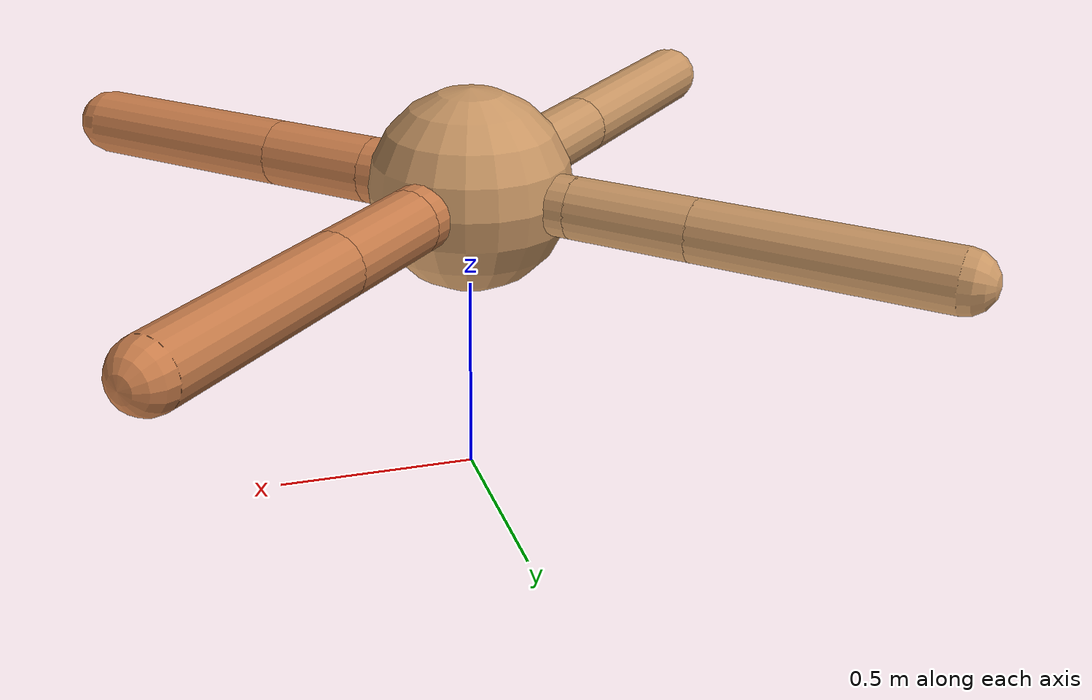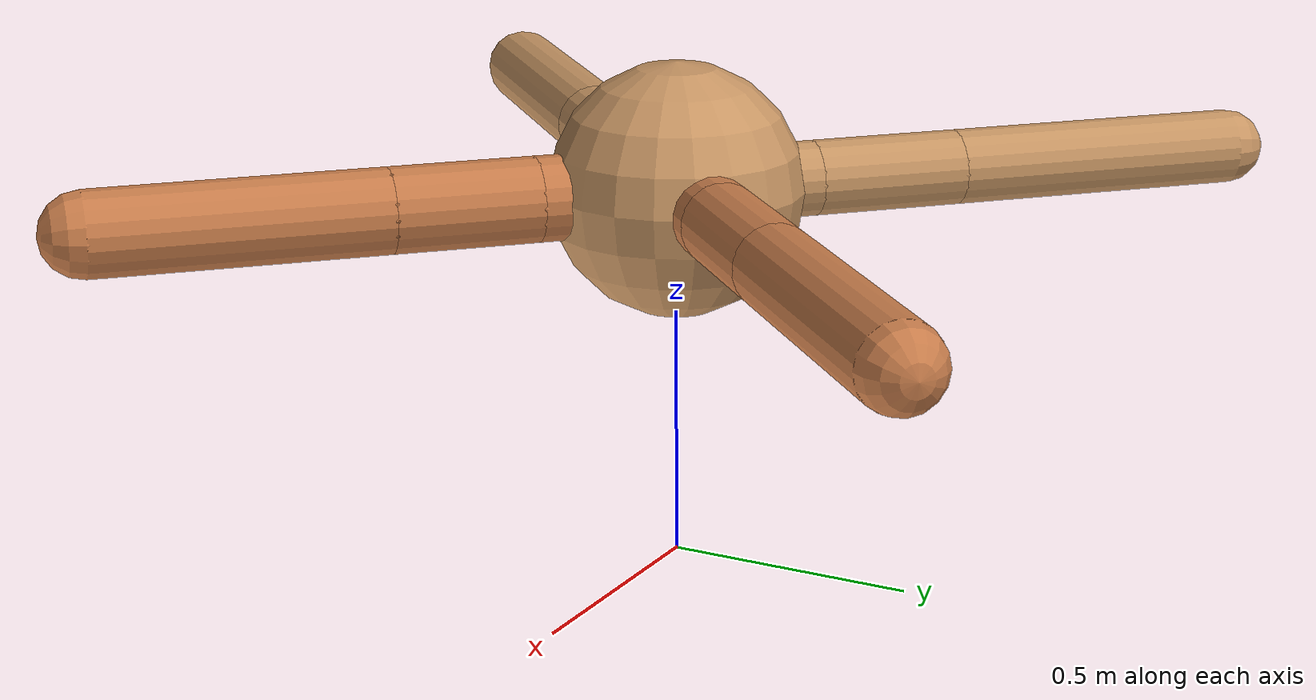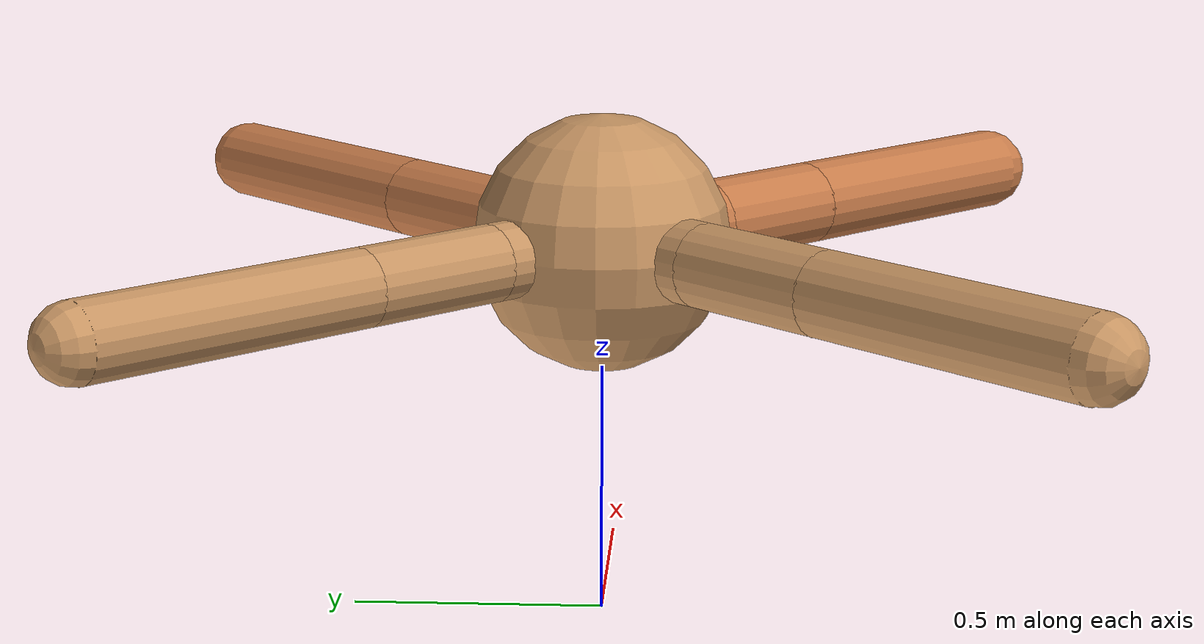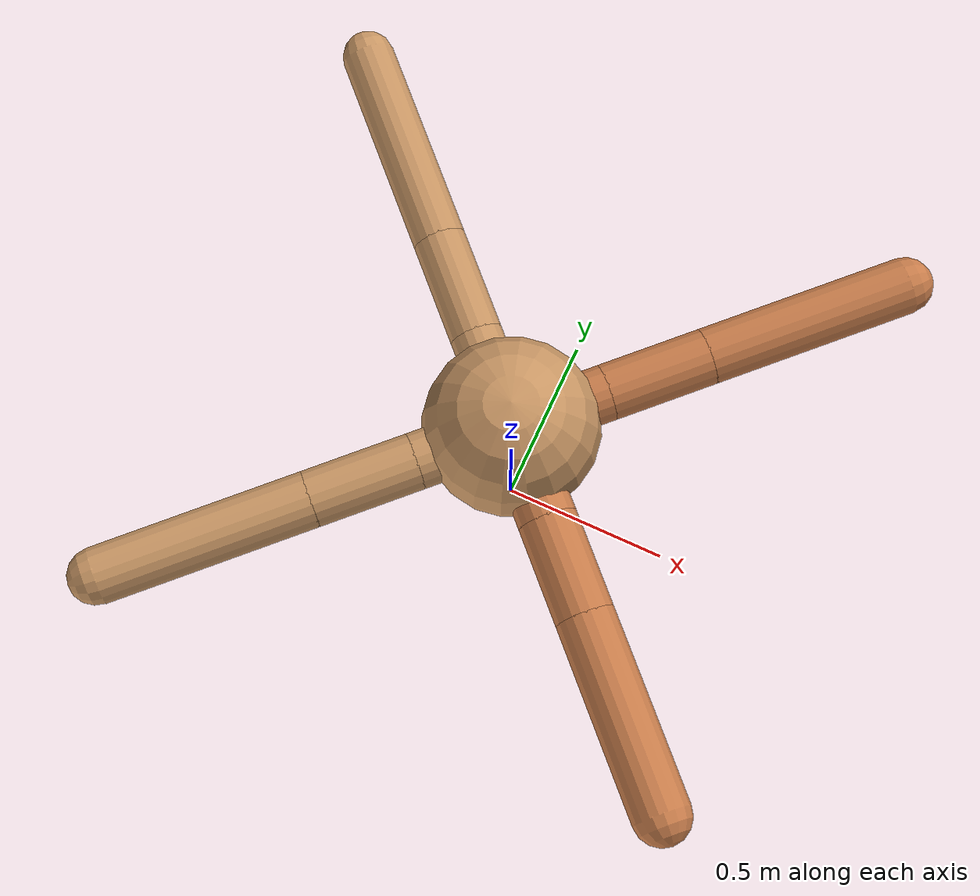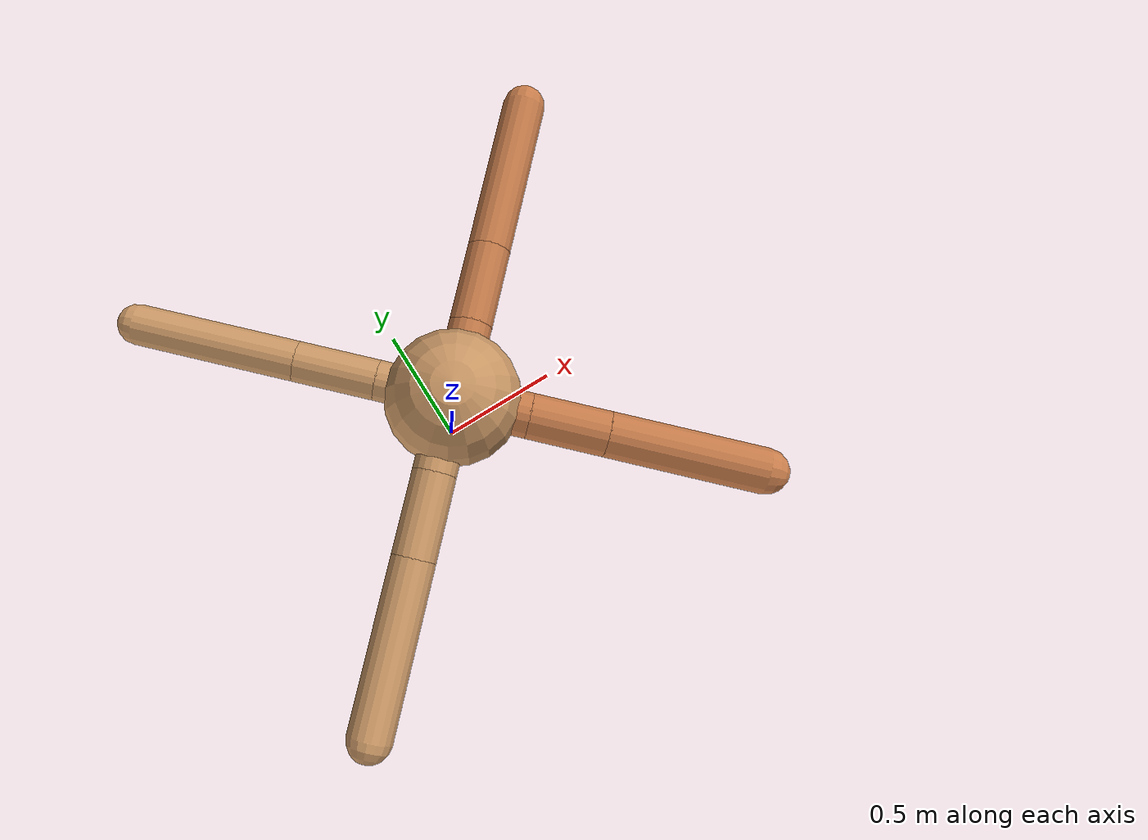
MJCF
<?xml version="1.0" ?>
<mujoco model="ant">

	<compiler angle="degree" coordinate="local" inertiafromgeom="true"/>

	<option integrator="RK4" timestep="0.01"/>

	<custom>

		<numeric data="0.0 0.0 0.55 1.0 0.0 0.0 0.0 0.0 1.0 0.0 -1.0 0.0 -1.0 0.0 1.0" name="init_qpos"/>

	</custom>

	<default>

		<joint armature="1" damping="1" limited="true"/>

		<geom conaffinity="0" condim="3" density="5.0" friction="1.5 0.1 0.1" margin="0.01" rgba="0.8 0.6 0.4 1"/>

	</default>

	<worldbody>

		<body name="torso" pos="0 0 0.75">

			<geom name="torso_geom" pos="0 0 0" size="0.25171077078416315" type="sphere"/>

			<!--joint armature="0" damping="0" limited="false" margin="0.01" name="root" pos="0 0 0" type="free"/-->

			<body name="front_left_leg" pos="0 0 0">

				<geom fromto="0 0 0 0.2 0.2 0" name="aux_1_geom" size="0.0807776871820591" type="capsule" rgba=".8 .5 .3 1"/>

				<body name="aux_1" pos="0.2 0.2 0">

					<joint axis="0 0 1" name="hip_1" pos="0.0 0.0 0.0" range="-40 40" type="hinge"/>

					<geom fromto="0 0 0 0.21229889823322035 0.21229889823322035 0" name="left_leg_geom" size="0.0807776871820591" type="capsule" rgba=".8 .5 .3 1"/>

					<body pos="0.21229889823322035 0.21229889823322035 0" name="front_left_foot">

						<joint axis="-1 1 0" name="ankle_1" pos="0.0 0.0 0.0" range="30 100" type="hinge"/>

						<geom fromto="0 0 0 0.4245977964664407 0.4245977964664407 0" name="left_ankle_geom" size="0.0807776871820591" type="capsule" rgba=".8 .5 .3 1"/>

					</body>

				</body>

			</body>

			<body name="front_right_leg" pos="0 0 0">

				<geom fromto="0 0 0 -0.2 0.2 0" name="aux_2_geom" size="0.07499729946866826" type="capsule"/>

				<body name="aux_2" pos="-0.2 0.2 0">

					<joint axis="0 0 1" name="hip_2" pos="0.0 0.0 0.0" range="-40 40" type="hinge"/>

					<geom fromto="0 0 0 -0.2131564394917781 0.2131564394917781 0" name="right_leg_geom" size="0.07499729946866826" type="capsule"/>

					<body pos="-0.2131564394917781 0.2131564394917781 0" name="front_right_foot">

						<joint axis="1 1 0" name="ankle_2" pos="0.0 0.0 0.0" range="-100 -30" type="hinge"/>

						<geom fromto="0 0 0 -0.4263128789835562 0.4263128789835562 0" name="right_ankle_geom" size="0.07499729946866826" type="capsule"/>

					</body>

				</body>

			</body>

			<body name="left_back_leg" pos="0 0 0">

				<geom fromto="0 0 0 -0.2 -0.2 0" name="aux_3_geom" size="0.08127459168804496" type="capsule"/>

				<body name="aux_3" pos="-0.2 -0.2 0">

					<joint axis="0 0 1" name="hip_3" pos="0.0 0.0 0.0" range="-40 40" type="hinge"/>

					<geom fromto="0 0 0 -0.21769394298971903 -0.21769394298971903 0" name="back_leg_geom" size="0.08127459168804496" type="capsule"/>

					<body pos="-0.21769394298971903 -0.21769394298971903 0" name="left_back_foot">

						<joint axis="-1 1 0" name="ankle_3" pos="0.0 0.0 0.0" range="-100 -30" type="hinge"/>

						<geom fromto="0 0 0 -0.43538788597943806 -0.43538788597943806 0" name="third_ankle_geom" size="0.08127459168804496" type="capsule"/>

					</body>

				</body>

			</body>

			<body name="right_back_leg" pos="0 0 0">

				<geom fromto="0 0 0 0.2 -0.2 0" name="aux_4_geom" size="0.08407827383906082" type="capsule" rgba=".8 .5 .3 1"/>

				<body name="aux_4" pos="0.2 -0.2 0">

					<joint axis="0 0 1" name="hip_4" pos="0.0 0.0 0.0" range="-40 40" type="hinge"/>

					<geom fromto="0 0 0 0.2023347900427034 -0.2023347900427034 0" name="rightback_leg_geom" size="0.08407827383906082" type="capsule" rgba=".8 .5 .3 1"/>

					<body pos="0.2023347900427034 -0.2023347900427034 0" name="right_back_foot">

						<joint axis="1 1 0" name="ankle_4" pos="0.0 0.0 0.0" range="30 100" type="hinge"/>

						<geom fromto="0 0 0 0.4046695800854068 -0.4046695800854068 0" name="fourth_ankle_geom" size="0.08407827383906082" type="capsule" rgba=".8 .5 .3 1"/>

					</body>

				</body>

			</body>

		</body>

	</worldbody>

	<actuator>

		<motor ctrllimited="true" ctrlrange="-1.0 1.0" joint="hip_4" gear="150"/>

		<motor ctrllimited="true" ctrlrange="-1.0 1.0" joint="ankle_4" gear="150"/>

		<motor ctrllimited="true" ctrlrange="-1.0 1.0" joint="hip_1" gear="150"/>

		<motor ctrllimited="true" ctrlrange="-1.0 1.0" joint="ankle_1" gear="150"/>

		<motor ctrllimited="true" ctrlrange="-1.0 1.0" joint="hip_2" gear="150"/>

		<motor ctrllimited="true" ctrlrange="-1.0 1.0" joint="ankle_2" gear="150"/>

		<motor ctrllimited="true" ctrlrange="-1.0 1.0" joint="hip_3" gear="150"/>

		<motor ctrllimited="true" ctrlrange="-1.0 1.0" joint="ankle_3" gear="150"/>

	</actuator>

</mujoco>
